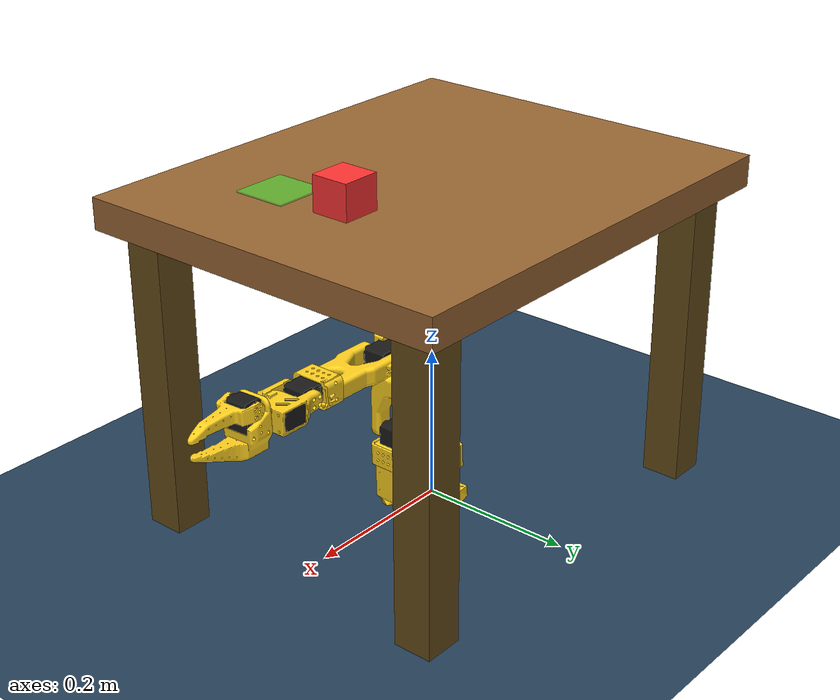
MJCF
<mujoco model="SO101 Pick and Place Scene">
    <compiler angle="radian" meshdir="SO101/assets" autolimits="true"/>
    <option timestep="0.002" integrator="Euler" gravity="0 0 -9.81"/>

    <default>
        <default class="so101">
            <joint damping="1" frictionloss="0.1" armature="0.005"/>
            <position kp="50"/>
            <default class="visual">
                <geom type="mesh" contype="0" conaffinity="0" group="2"/>
            </default>
            <default class="collision">
                <geom group="3"/>
            </default>
        </default>
        <default class="sts3215">
            <geom contype="0" conaffinity="0"/>
            <joint damping="0.60" frictionloss="0.052" armature="0.028"/>
            <position kp="998.22" kv="2.731" forcerange="-2.94 2.94"/>
        </default>
        <default class="backlash">
            <joint damping="0.01" frictionloss="0" armature="0.01" limited="true"
                range="-0.008726646259971648 0.008726646259971648"/>
        </default>
    </default>

    <visual>
        <headlight diffuse="0.6 0.6 0.6" ambient="0.3 0.3 0.3" specular="0 0 0"/>
        <rgba haze="0.15 0.25 0.35 1"/>
        <global azimuth="160" elevation="-20"/>
    </visual>

    <asset>
        <mesh file="waveshare_mounting_plate_so101_v2.stl"/>
        <mesh file="sts3215_03a_v1.stl"/>
        <mesh file="motor_holder_so101_base_v1.stl"/>
        <mesh file="wrist_roll_follower_so101_v1.stl"/>
        <mesh file="moving_jaw_so101_v1.stl"/>
        <mesh file="base_motor_holder_so101_v1.stl"/>
        <mesh file="upper_arm_so101_v1.stl"/>
        <mesh file="wrist_roll_pitch_so101_v2.stl"/>
        <mesh file="under_arm_so101_v1.stl"/>
        <mesh file="rotation_pitch_so101_v1.stl"/>
        <mesh file="motor_holder_so101_wrist_v1.stl"/>
        <mesh file="sts3215_03a_no_horn_v1.stl"/>
        <mesh file="base_so101_v2.stl"/>
        <material name="base_motor_holder_so101_v1_material" rgba="1 0.82 0.12 1"/>
        <material name="base_so101_v2_material" rgba="1 0.82 0.12 1"/>
        <material name="sts3215_03a_v1_material" rgba="0.1 0.1 0.1 1"/>
        <material name="waveshare_mounting_plate_so101_v2_material" rgba="1 0.82 0.12 1"/>
        <material name="motor_holder_so101_base_v1_material" rgba="1 0.82 0.12 1"/>
        <material name="rotation_pitch_so101_v1_material" rgba="1 0.82 0.12 1"/>
        <material name="upper_arm_so101_v1_material" rgba="1 0.82 0.12 1"/>
        <material name="under_arm_so101_v1_material" rgba="1 0.82 0.12 1"/>
        <material name="motor_holder_so101_wrist_v1_material" rgba="1 0.82 0.12 1"/>
        <material name="sts3215_03a_no_horn_v1_material" rgba="0.1 0.1 0.1 1.0"/>
        <material name="wrist_roll_pitch_so101_v2_material" rgba="1 0.82 0.12 1"/>
        <material name="wrist_roll_follower_so101_v1_material" rgba="1 0.82 0.12 1"/>
        <material name="moving_jaw_so101_v1_material" rgba="1 0.82 0.12 1"/>
        <texture type="skybox" builtin="gradient" rgb1="0.3 0.5 0.7" rgb2="0 0 0" width="512" height="3072"/>
        <texture type="2d" name="groundplane" builtin="checker" mark="edge" rgb1="0.2 0.3 0.4"
            rgb2="0.1 0.2 0.3" markrgb="0.8 0.8 0.8" width="300" height="300"/>
        <material name="groundplane" texture="groundplane" texuniform="true" texrepeat="5 5"
            reflectance="0.2"/>
    </asset>

    <worldbody>
        <light pos="0 0 3.5" dir="0 0 -1" directional="true"/>
        <geom name="floor" size="0 0 0.05" pos="0 0 0" type="plane" material="groundplane"/>

        <body name="table" pos="0 0 0">
            <geom type="box" size="0.3 0.25 0.02" pos="0 0 0.41" rgba=".6 .4 .2 1" contype="1" conaffinity="1" density="500"/>
            <geom type="box" size="0.025 0.025 0.2" pos="0.25 0.2 0.2" rgba=".4 .3 .1 1" density="500"/>
            <geom type="box" size="0.025 0.025 0.2" pos="0.25 -0.2 0.2" rgba=".4 .3 .1 1" density="500"/>
            <geom type="box" size="0.025 0.025 0.2" pos="-0.25 0.2 0.2" rgba=".4 .3 .1 1" density="500"/>
            <geom type="box" size="0.025 0.025 0.2" pos="-0.25 -0.2 0.2" rgba=".4 .3 .1 1" density="500"/>
        </body>

        <body name="cube" pos="0.15 0.0 0.45">
            <inertial pos="0 0 0" mass="0.05" diaginertia="1e-6 1e-6 1e-6"/>
            <joint type="free"/>
            <geom type="box" size="0.025 0.025 0.025" rgba="1 0.2 0.2 1" contype="1" conaffinity="1" density="320" friction="1.0 0.005 0.0001"/>
        </body>

        <body name="target_zone" pos="0.15 -0.1 0.43">
            <geom type="box" size="0.035 0.035 0.002" rgba="0.2 1 0.2 0.5" contype="0" conaffinity="0"/>
        </body>

        <body name="base" pos="0 0 0" childclass="so101">
            <inertial pos="0.0137179 -5.19711e-05 0.0334843" mass="0.147" fullinertia="0.000114686 0.000136117 0.000130364 -4.59787e-07 4.97151e-06 9.75275e-08"/>
            <geom type="mesh" class="visual" pos="-0.00636471 -9.94414e-05 -0.0024" quat="0.5 0.5 0.5 0.5" mesh="base_motor_holder_so101_v1" material="base_motor_holder_so101_v1_material"/>
            <geom type="mesh" class="visual" pos="-0.00636471 -8.97657e-09 -0.0024" quat="0.5 0.5 0.5 0.5" mesh="base_so101_v2" material="base_so101_v2_material"/>
            <geom type="mesh" class="visual" pos="0.0263353 -8.97657e-09 0.0437" quat="1 -2.85511e-16 -9.64433e-17 6.12908e-16" mesh="sts3215_03a_v1" material="sts3215_03a_v1_material"/>
            <geom type="mesh" class="visual" pos="-0.0309827 -0.000199441 0.0474" quat="0.5 0.5 0.5 0.5" mesh="waveshare_mounting_plate_so101_v2" material="waveshare_mounting_plate_so101_v2_material"/>
            <site group="3" name="baseframe" pos="8.67362e-19 9.55596e-18 3.46945e-18" quat="1 -8.17396e-19 3.78392e-17 2.22045e-16"/>

            <body name="shoulder" pos="0.0388353 -8.97657e-09 0.0624" quat="3.56167e-16 1.22818e-15 -1 -4.14635e-16">
                <joint axis="0 0 1" name="shoulder_pan" type="hinge" range="-1.9198621771937616 1.9198621771937634" class="sts3215"/>
                <inertial pos="-0.0307604 -1.66727e-05 -0.0252713" mass="0.100006" fullinertia="8.3759e-05 8.10403e-05 2.39783e-05 7.55525e-08 -1.16342e-06 1.54663e-07"/>
                <geom type="mesh" class="visual" pos="-0.0303992 0.000422241 -0.0417" quat="0.5 0.5 0.5 -0.5" mesh="sts3215_03a_v1" material="sts3215_03a_v1_material"/>
                <geom type="mesh" class="collision" pos="-0.0303992 0.000422241 -0.0417" quat="0.5 0.5 0.5 -0.5" mesh="sts3215_03a_v1" material="sts3215_03a_v1_material"/>
                <geom type="mesh" class="visual" pos="-0.0675992 -0.000177759 0.0158499" quat="0.5 0.5 -0.5 0.5" mesh="motor_holder_so101_base_v1" material="motor_holder_so101_base_v1_material"/>
                <geom type="mesh" class="collision" pos="-0.0675992 -0.000177759 0.0158499" quat="0.5 0.5 -0.5 0.5" mesh="motor_holder_so101_base_v1" material="motor_holder_so101_base_v1_material"/>
                <geom type="mesh" class="visual" pos="0.0122008 2.22413e-05 0.0464" quat="0.707107 -0.707107 -0 8.3163e-34" mesh="rotation_pitch_so101_v1" material="rotation_pitch_so101_v1_material"/>
                <geom type="mesh" class="collision" pos="0.0122008 2.22413e-05 0.0464" quat="0.707107 -0.707107 -0 8.3163e-34" mesh="rotation_pitch_so101_v1" material="rotation_pitch_so101_v1_material"/>

                <body name="upper_arm" pos="-0.0303992 -0.0182778 -0.0542" quat="0.5 -0.5 -0.5 -0.5">
                    <joint axis="0 0 1" name="shoulder_lift" type="hinge" range="-1.7453292519943224 1.7453292519943366" class="sts3215"/>
                    <inertial pos="-0.0898471 -0.00838224 0.0184089" mass="0.103" fullinertia="4.08002e-05 0.000147318 0.000142487 -1.97819e-05 -4.03016e-08 8.97326e-09"/>
                    <geom type="mesh" class="visual" pos="-0.11257 -0.0155 0.0187" quat="4.56308e-16 -0.707107 0.707107 -1.37383e-16" mesh="sts3215_03a_v1" material="sts3215_03a_v1_material"/>
                    <geom type="mesh" class="collision" pos="-0.11257 -0.0155 0.0187" quat="4.56308e-16 -0.707107 0.707107 -1.37383e-16" mesh="sts3215_03a_v1" material="sts3215_03a_v1_material"/>
                    <geom type="mesh" class="visual" pos="-0.065085 0.012 0.0182" quat="0 1 0 0" mesh="upper_arm_so101_v1" material="upper_arm_so101_v1_material"/>
                    <geom type="mesh" class="collision" pos="-0.065085 0.012 0.0182" quat="0 1 0 0" mesh="upper_arm_so101_v1" material="upper_arm_so101_v1_material"/>

                    <body name="lower_arm" pos="-0.11257 -0.028 1.73763e-16" quat="0.707107 -5.98613e-17 -2.58051e-17 0.707107">
                        <joint axis="0 0 1" name="elbow_flex" type="hinge" range="-1.69 1.69" class="sts3215"/>
                        <inertial pos="-0.0980701 0.00324376 0.0182831" mass="0.104" fullinertia="2.87438e-05 0.000159844 0.00014529 7.41152e-06 1.26409e-06 -4.90188e-08"/>
                        <geom type="mesh" class="visual" pos="-0.0648499 -0.032 0.0182" quat="0 1 0 0" mesh="under_arm_so101_v1" material="under_arm_so101_v1_material"/>
                        <geom type="mesh" class="collision" pos="-0.0648499 -0.032 0.0182" quat="0 1 0 0" mesh="under_arm_so101_v1" material="under_arm_so101_v1_material"/>
                        <geom type="mesh" class="visual" pos="-0.0648499 -0.032 0.018" quat="3.92687e-16 -1 -1.9186e-15 -6.38378e-16" mesh="motor_holder_so101_wrist_v1" material="motor_holder_so101_wrist_v1_material"/>
                        <geom type="mesh" class="collision" pos="-0.0648499 -0.032 0.018" quat="3.92687e-16 -1 -1.9186e-15 -6.38378e-16" mesh="motor_holder_so101_wrist_v1" material="motor_holder_so101_wrist_v1_material"/>
                        <geom type="mesh" class="visual" pos="-0.1224 0.0052 0.0187" quat="7.21645e-16 1.56949e-15 1 -3.33067e-16" mesh="sts3215_03a_v1" material="sts3215_03a_v1_material"/>
                        <geom type="mesh" class="collision" pos="-0.1224 0.0052 0.0187" quat="7.21645e-16 1.56949e-15 1 -3.33067e-16" mesh="sts3215_03a_v1" material="sts3215_03a_v1_material"/>

                        <body name="wrist" pos="-0.1349 0.0052 3.62355e-17" quat="0.707107 9.58722e-16 -7.51313e-16 -0.707107">
                            <joint axis="0 0 1" name="wrist_flex" type="hinge" range="-1.6580628494556928 1.6580627293335335" class="sts3215"/>
                            <inertial pos="-0.000103312 -0.0386143 0.0281156" mass="0.079" fullinertia="3.68263e-05 2.5391e-05 2.1e-05 1.7893e-08 -5.28128e-08 3.6412e-06"/>
                            <geom type="mesh" class="visual" pos="8.32667e-17 -0.0424 0.0306" quat="0.5 0.5 0.5 -0.5" mesh="sts3215_03a_no_horn_v1" material="sts3215_03a_no_horn_v1_material"/>
                            <geom type="mesh" class="collision" pos="8.32667e-17 -0.0424 0.0306" quat="0.5 0.5 0.5 -0.5" mesh="sts3215_03a_no_horn_v1" material="sts3215_03a_no_horn_v1_material"/>
                            <geom type="mesh" class="visual" pos="0 -0.028 0.0181" quat="0.5 -0.5 -0.5 -0.5" mesh="wrist_roll_pitch_so101_v2" material="wrist_roll_pitch_so101_v2_material"/>
                            <geom type="mesh" class="collision" pos="0 -0.028 0.0181" quat="0.5 -0.5 -0.5 -0.5" mesh="wrist_roll_pitch_so101_v2" material="wrist_roll_pitch_so101_v2_material"/>

                            <body name="gripper" pos="5.55112e-17 -0.0611 0.0181" quat="0.0172091 -0.0172091 0.706897 0.706897">
                                <joint axis="0 0 1" name="wrist_roll" type="hinge" range="-2.7438472969992493 2.841206309382605" class="sts3215"/>
                                <inertial pos="0.000213627 0.000245138 -0.025187" mass="0.087" fullinertia="2.75087e-05 4.33657e-05 3.45059e-05 -3.35241e-07 -5.7352e-06 -5.17847e-08"/>
                                <geom type="mesh" class="visual" pos="0.0077 0.0001 -0.0234" quat="0.707107 -0.707107 1.66015e-15 6.45094e-15" mesh="sts3215_03a_v1" material="sts3215_03a_v1_material"/>
                                <geom type="mesh" class="collision" pos="0.0077 0.0001 -0.0234" quat="0.707107 -0.707107 1.66015e-15 6.45094e-15" mesh="sts3215_03a_v1" material="sts3215_03a_v1_material"/>
                                <geom type="mesh" class="visual" pos="8.32667e-17 -0.000218214 0.000949706" quat="0 1 0 0" mesh="wrist_roll_follower_so101_v1" material="wrist_roll_follower_so101_v1_material"/>
                                <geom type="mesh" class="collision" pos="8.32667e-17 -0.000218214 0.000949706" quat="0 1 0 0" mesh="wrist_roll_follower_so101_v1" material="wrist_roll_follower_so101_v1_material"/>
                                <site group="3" name="gripperframe" pos="-0.0079 -0.000218121 -0.0981274" quat="0.707107 -0 0.707107 -2.37788e-17"/>

                                <body name="moving_jaw_so101_v1" pos="0.0202 0.0188 -0.0234" quat="0.707107 0.707107 -1.85362e-08 1.85362e-08">
                                    <joint axis="0 0 1" name="gripper" type="hinge" range="-0.17453297762778586 1.7453291995659765" class="sts3215"/>
                                    <inertial pos="-0.00157495 -0.0300244 0.0192755" mass="0.012" fullinertia="6.61427e-06 1.89032e-06 5.28738e-06 -3.19807e-07 -5.90717e-09 -1.09945e-07"/>
                                    <geom type="mesh" class="visual" pos="-5.55112e-17 -5.55112e-17 0.0189" quat="1 -0 3.00524e-16 -2.00834e-17" mesh="moving_jaw_so101_v1" material="moving_jaw_so101_v1_material"/>
                                    <geom type="mesh" class="collision" pos="-5.55112e-17 -5.55112e-17 0.0189" quat="1 -0 3.00524e-16 -2.00834e-17" mesh="moving_jaw_so101_v1" material="moving_jaw_so101_v1_material"/>
                                </body>
                            </body>
                        </body>
                    </body>
                </body>
            </body>
        </body>
    </worldbody>

    <actuator>
        <position class="sts3215" name="shoulder_pan" joint="shoulder_pan" forcerange="-3.35 3.35" ctrlrange="-1.91986 1.91986"/>
        <position class="sts3215" name="shoulder_lift" joint="shoulder_lift" forcerange="-3.35 3.35" ctrlrange="-1.74533 1.74533"/>
        <position class="sts3215" name="elbow_flex" joint="elbow_flex" forcerange="-3.35 3.35" ctrlrange="-1.69 1.69"/>
        <position class="sts3215" name="wrist_flex" joint="wrist_flex" forcerange="-3.35 3.35" ctrlrange="-1.65806 1.65806"/>
        <position class="sts3215" name="wrist_roll" joint="wrist_roll" forcerange="-3.35 3.35" ctrlrange="-2.74385 2.84121"/>
        <position class="sts3215" name="gripper" joint="gripper" forcerange="-3.35 3.35" ctrlrange="-0.17453 1.74533"/>
    </actuator>
</mujoco>
